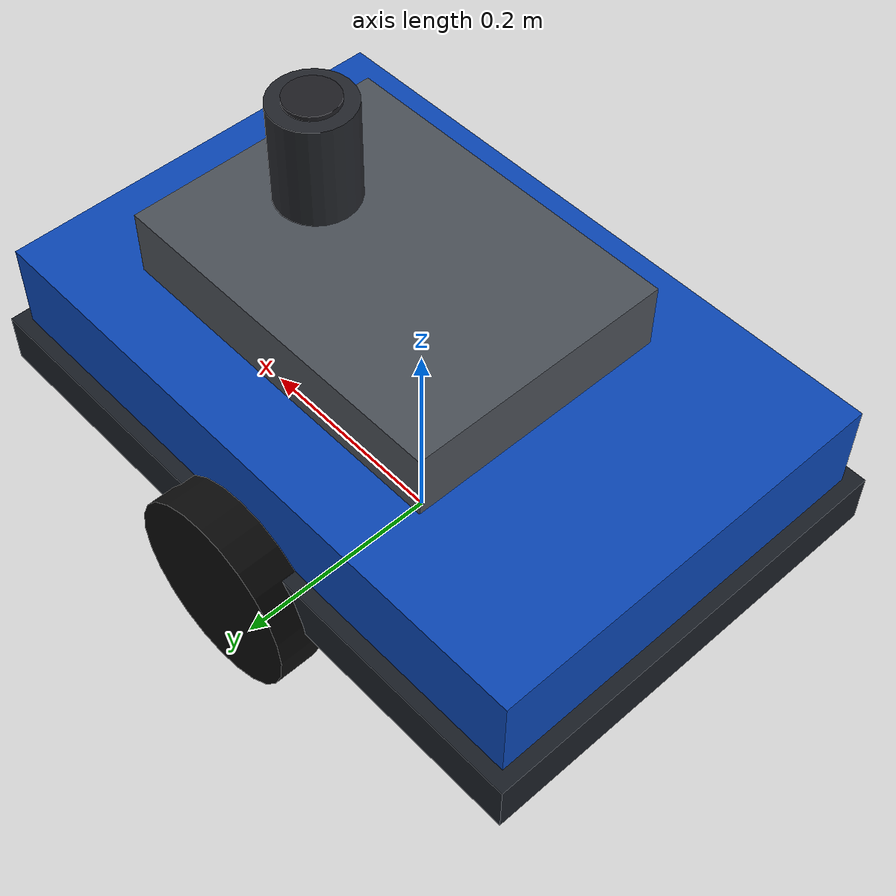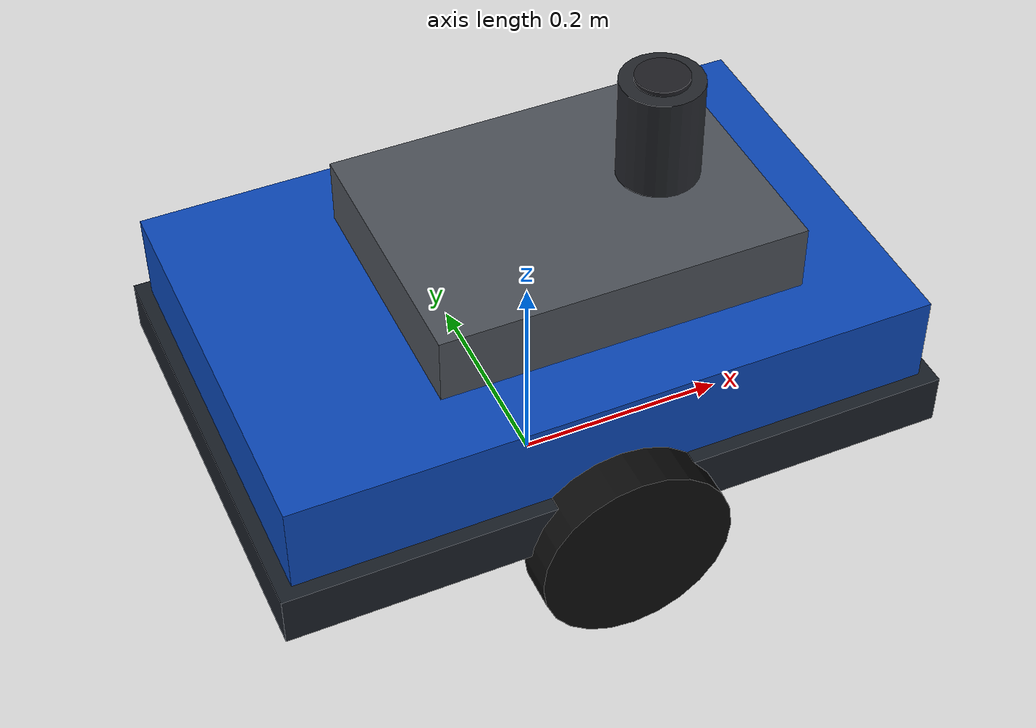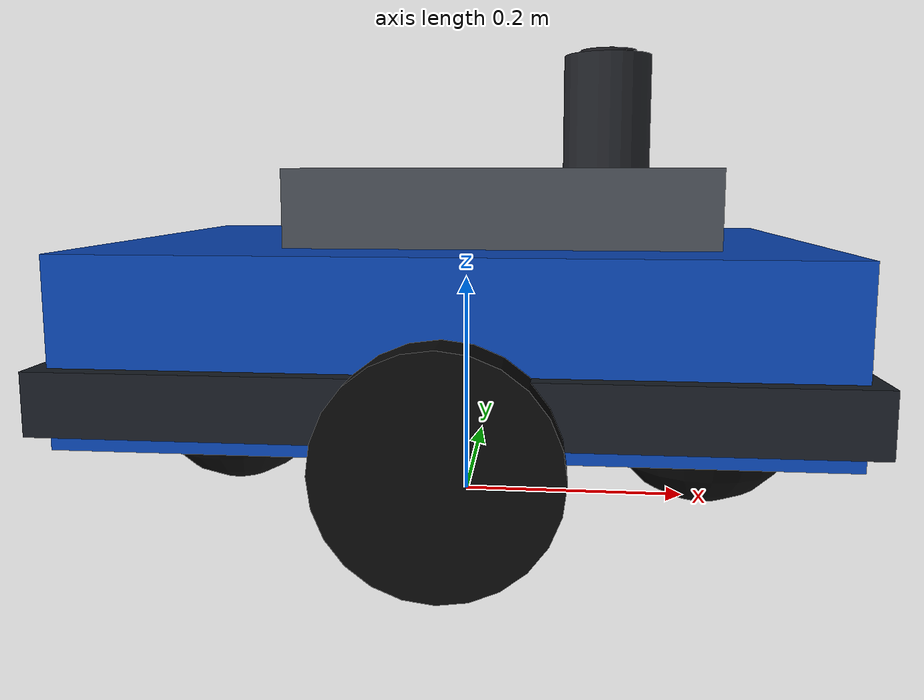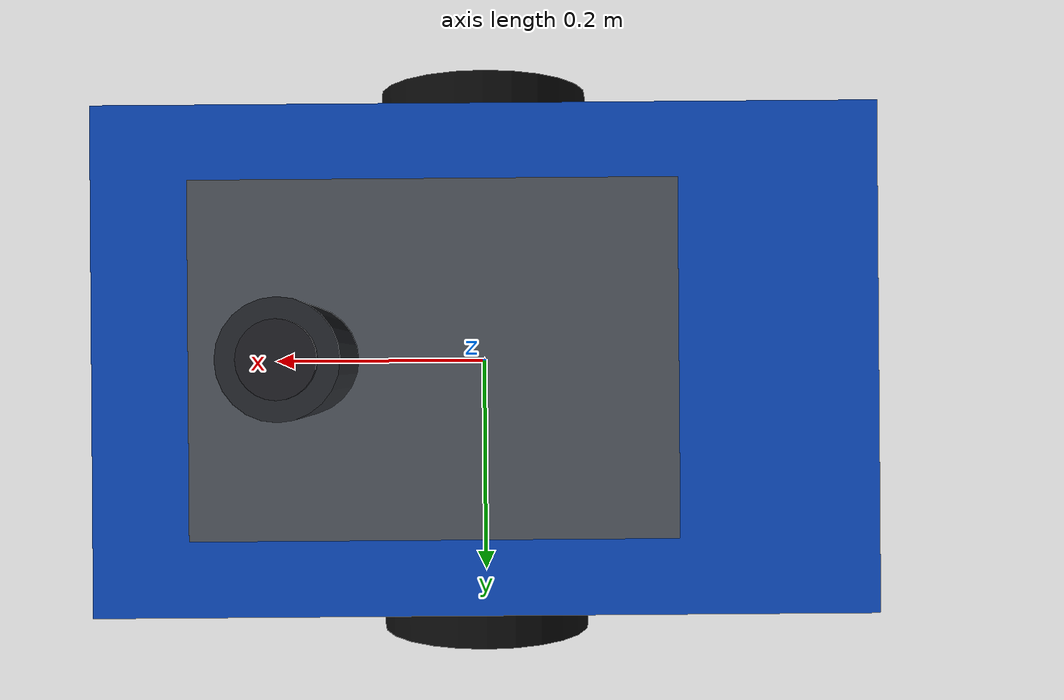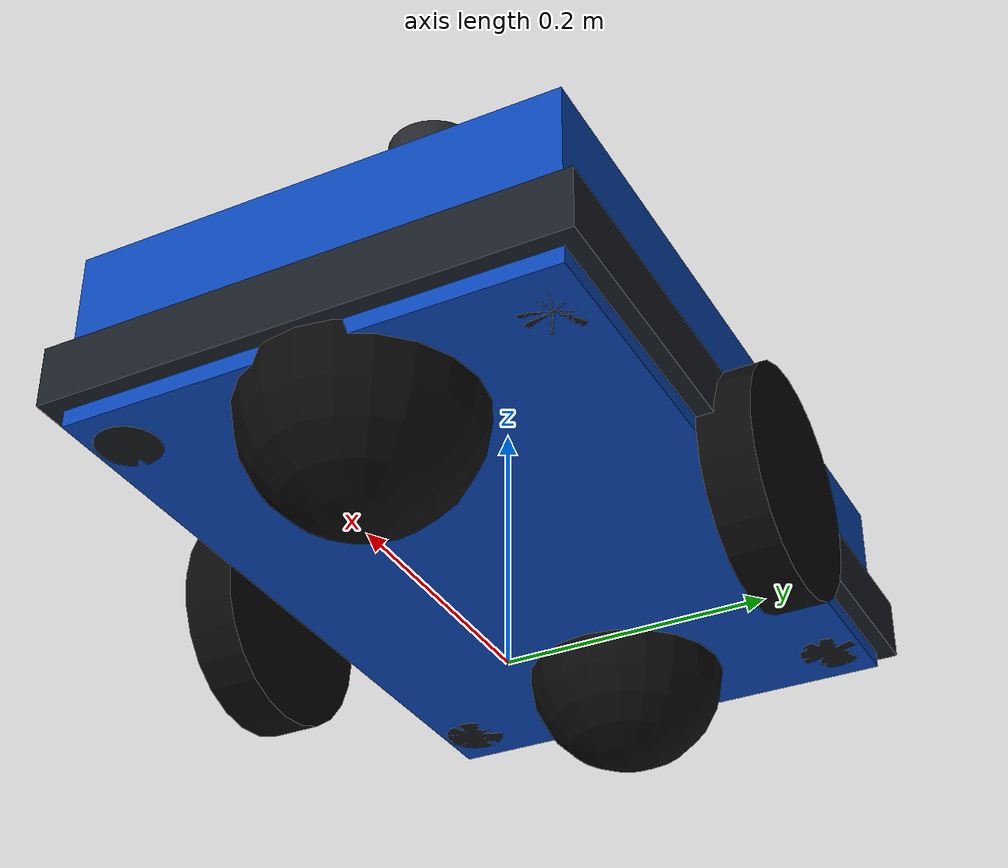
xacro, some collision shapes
<?xml version="1.0"?>
<robot xmlns:xacro="http://www.ros.org/wiki/xacro" name="heavy_diff_amr">
  <xacro:arg name="robot_name" default="heavy_1"/>
  <xacro:arg name="controllers_file" default=""/>
  <xacro:include filename="$(find hetero_fleet_description)/urdf/common.xacro"/>
  <xacro:property name="controllers_file" value="$(arg controllers_file)"/>
  <xacro:property name="robot_name" value="$(arg robot_name)"/>
  <xacro:property name="s" value="0.445526037015"/>
  <xacro:property name="base_length" value="${1.32 * s}"/>
  <xacro:property name="base_width" value="${0.86 * s}"/>
  <xacro:property name="base_height" value="${0.33 * s}"/>
  <xacro:property name="wheel_radius" value="${0.20 * s}"/>
  <xacro:property name="wheel_width" value="${0.09 * s}"/>

  <link name="base_footprint"/>
  <link name="base_link">
    <inertial><origin xyz="${0.10 * s} 0 0"/><mass value="${125.0 * s**3}"/><inertia ixx="${10.0 * s**5}" ixy="0" ixz="0" iyy="${14.0 * s**5}" iyz="0" izz="${20.0 * s**5}"/></inertial>
    <visual><origin xyz="0 0 0"/><geometry><mesh filename="package://hetero_fleet_description/meshes/heavy_shell.stl" scale="${s} ${s} ${s}"/></geometry><material name="blue"><color rgba="0.04 0.28 0.72 1"/></material></visual>
    <collision><origin xyz="0 0 ${base_height / 2}"/><geometry><box size="${base_length} ${base_width} ${base_height}"/></geometry></collision>
  </link>
  <joint name="base_footprint_joint" type="fixed"><parent link="base_footprint"/><child link="base_link"/><origin xyz="0 0 ${wheel_radius}"/></joint>
  <link name="underbody_link"><visual><origin xyz="0 0 ${0.07 * s}"/><geometry><box size="${1.22 * s} ${0.76 * s} ${0.14 * s}"/></geometry><material name="underbody"><color rgba="0.12 0.14 0.16 1"/></material></visual><collision><origin xyz="0 0 ${0.07 * s}"/><geometry><box size="${1.22 * s} ${0.76 * s} ${0.14 * s}"/></geometry></collision></link>
  <joint name="underbody_joint" type="fixed"><parent link="base_link"/><child link="underbody_link"/><origin xyz="0 0 ${0.01 * s}"/></joint>
  <link name="heavy_bumper_link"><visual><origin xyz="0 0 ${0.055 * s}"/><geometry><box size="${1.38 * s} ${0.92 * s} ${0.11 * s}"/></geometry><material name="bumper"><color rgba="0.10 0.12 0.15 1"/></material></visual><collision><origin xyz="0 0 ${0.055 * s}"/><geometry><box size="${1.38 * s} ${0.92 * s} ${0.11 * s}"/></geometry></collision></link>
  <joint name="heavy_bumper_joint" type="fixed"><parent link="base_link"/><child link="heavy_bumper_link"/><origin xyz="0 0 ${0.03 * s}"/></joint>
  <link name="payload_deck_link">
    <visual><origin xyz="0 0 ${0.07 * s}"/><geometry><box size="${0.76 * s} ${0.56 * s} ${0.14 * s}"/></geometry><material name="deck"><color rgba="0.30 0.32 0.35 1"/></material></visual>
    <collision><origin xyz="0 0 ${0.07 * s}"/><geometry><box size="${0.76 * s} ${0.56 * s} ${0.14 * s}"/></geometry></collision>
  </link>
  <joint name="payload_deck_joint" type="fixed"><parent link="base_link"/><child link="payload_deck_link"/><origin xyz="${0.08 * s} 0 ${base_height}"/></joint>

  <link name="front_left_corner_guard"><visual><origin xyz="0 0 ${0.16 * s}"/><geometry><cylinder radius="${0.055 * s}" length="${0.32 * s}"/></geometry><material name="guard"><color rgba="0.08 0.09 0.10 1"/></material></visual><collision><origin xyz="0 0 ${0.16 * s}"/><geometry><cylinder radius="${0.055 * s}" length="${0.32 * s}"/></geometry></collision></link>
  <joint name="front_left_corner_guard_joint" type="fixed"><parent link="base_link"/><child link="front_left_corner_guard"/><origin xyz="${0.57 * s} ${0.37 * s} 0"/></joint>
  <link name="front_right_corner_guard"><visual><origin xyz="0 0 ${0.16 * s}"/><geometry><cylinder radius="${0.055 * s}" length="${0.32 * s}"/></geometry><material name="guard"><color rgba="0.08 0.09 0.10 1"/></material></visual><collision><origin xyz="0 0 ${0.16 * s}"/><geometry><cylinder radius="${0.055 * s}" length="${0.32 * s}"/></geometry></collision></link>
  <joint name="front_right_corner_guard_joint" type="fixed"><parent link="base_link"/><child link="front_right_corner_guard"/><origin xyz="${0.57 * s} ${-0.37 * s} 0"/></joint>
  <link name="rear_left_corner_guard"><visual><origin xyz="0 0 ${0.16 * s}"/><geometry><cylinder radius="${0.055 * s}" length="${0.32 * s}"/></geometry><material name="guard"><color rgba="0.08 0.09 0.10 1"/></material></visual><collision><origin xyz="0 0 ${0.16 * s}"/><geometry><cylinder radius="${0.055 * s}" length="${0.32 * s}"/></geometry></collision></link>
  <joint name="rear_left_corner_guard_joint" type="fixed"><parent link="base_link"/><child link="rear_left_corner_guard"/><origin xyz="${-0.57 * s} ${0.37 * s} 0"/></joint>
  <link name="rear_right_corner_guard"><visual><origin xyz="0 0 ${0.16 * s}"/><geometry><cylinder radius="${0.055 * s}" length="${0.32 * s}"/></geometry><material name="guard"><color rgba="0.08 0.09 0.10 1"/></material></visual><collision><origin xyz="0 0 ${0.16 * s}"/><geometry><cylinder radius="${0.055 * s}" length="${0.32 * s}"/></geometry></collision></link>
  <joint name="rear_right_corner_guard_joint" type="fixed"><parent link="base_link"/><child link="rear_right_corner_guard"/><origin xyz="${-0.57 * s} ${-0.37 * s} 0"/></joint>

  <xacro:macro name="drive_wheel" params="side y">
    <link name="${side}_wheel_link">
      <inertial><mass value="${2.0 * s**3}"/><inertia ixx="${0.025 * s**5}" ixy="0" ixz="0" iyy="${0.014 * s**5}" iyz="0" izz="${0.025 * s**5}"/></inertial>
      <visual><origin rpy="${pi / 2} 0 0"/><geometry><cylinder radius="${wheel_radius}" length="${wheel_width}"/></geometry><material name="rubber"><color rgba="0.04 0.04 0.04 1"/></material></visual>
      <collision><origin rpy="${pi / 2} 0 0"/><geometry><cylinder radius="${wheel_radius}" length="${wheel_width}"/></geometry></collision>
    </link>
    <joint name="${side}_wheel_joint" type="continuous"><parent link="base_link"/><child link="${side}_wheel_link"/><origin xyz="0 ${y} 0"/><axis xyz="0 1 0"/><limit effort="65" velocity="10"/></joint>
  </xacro:macro>
  <xacro:drive_wheel side="left" y="${base_width / 2 + wheel_width / 2}"/><xacro:drive_wheel side="right" y="${-base_width / 2 - wheel_width / 2}"/>
  <link name="heavy_caster_fork_link"><visual><origin xyz="0 0 ${0.10 * s}"/><geometry><box size="${0.12 * s} ${0.10 * s} ${0.20 * s}"/></geometry><material name="fork"><color rgba="0.16 0.17 0.18 1"/></material></visual><collision><origin xyz="0 0 ${0.10 * s}"/><geometry><box size="${0.12 * s} ${0.10 * s} ${0.20 * s}"/></geometry></collision></link>
  <joint name="heavy_caster_fork_joint" type="fixed"><parent link="base_link"/><child link="heavy_caster_fork_link"/><origin xyz="${0.48 * s} 0 ${0.02 * s}"/></joint>
  <link name="front_caster_link"><visual><geometry><sphere radius="${0.20 * s}"/></geometry><material name="rubber"><color rgba="0.04 0.04 0.04 1"/></material></visual><collision><geometry><sphere radius="${0.20 * s}"/></geometry></collision></link>
  <joint name="front_caster_joint" type="fixed"><parent link="heavy_caster_fork_link"/><child link="front_caster_link"/><origin xyz="0 0 ${-0.02 * s}"/></joint>

  <link name="rear_safety_caster_link">
    <visual><geometry><sphere radius="${0.18 * s}"/></geometry><material name="rubber"><color rgba="0.04 0.04 0.04 1"/></material></visual>
    <collision><geometry><sphere radius="${0.18 * s}"/></geometry></collision>
  </link>
  <joint name="rear_safety_caster_joint" type="fixed">
    <parent link="base_link"/><child link="rear_safety_caster_link"/>
    <origin xyz="${-0.48 * s} 0 0"/>
  </joint>

  <link name="lidar_link">
    <inertial><mass value="0.18"/><inertia ixx="0.0003" ixy="0" ixz="0" iyy="0.0003" iyz="0" izz="0.0004"/></inertial>
    <visual><geometry><cylinder radius="${0.055 * s}" length="${0.06 * s}"/></geometry><material name="lidar"><color rgba="0.12 0.12 0.14 1"/></material></visual><collision><geometry><cylinder radius="${0.055 * s}" length="${0.06 * s}"/></geometry></collision>
  </link>
  <link name="lidar_mount_link"><visual><origin xyz="0 0 ${0.11 * s}"/><geometry><cylinder radius="${0.085 * s}" length="${0.22 * s}"/></geometry><material name="mount"><color rgba="0.14 0.15 0.17 1"/></material></visual><collision><origin xyz="0 0 ${0.11 * s}"/><geometry><cylinder radius="${0.075 * s}" length="${0.20 * s}"/></geometry></collision></link>
  <joint name="lidar_mount_joint" type="fixed"><parent link="payload_deck_link"/><child link="lidar_mount_link"/><origin xyz="${0.20 * s} 0 ${0.14 * s}"/></joint>
  <joint name="lidar_joint" type="fixed"><parent link="lidar_mount_link"/><child link="lidar_link"/><origin xyz="0 0 ${0.20 * s}"/></joint>
  <gazebo reference="lidar_link"><sensor name="${robot_name}_lidar" type="gpu_lidar"><always_on>1</always_on><visualize>false</visualize><update_rate>12</update_rate><topic>/${robot_name}/scan</topic><frame_id>lidar_link</frame_id><lidar><scan><horizontal><samples>720</samples><resolution>1</resolution><min_angle>-3.14159</min_angle><max_angle>3.14159</max_angle></horizontal></scan><range><min>0.15</min><max>18.0</max><resolution>0.01</resolution></range></lidar></sensor></gazebo>
  <xacro:fleet_gazebo_material link="base_link" rgba="0.04 0.28 0.72 1"/>
  <xacro:fleet_gazebo_wheel_dynamics link="left_wheel_link" mu1="1.5" mu2="1.5" kp="10000" kd="100.0" fdir1="1 0 0"/>
  <xacro:fleet_gazebo_wheel_dynamics link="right_wheel_link" mu1="1.5" mu2="1.5" kp="10000" kd="100.0" fdir1="1 0 0"/>
  <xacro:fleet_gazebo_wheel_dynamics link="front_caster_link" mu1="0.0" mu2="0.0" kp="10000" kd="100.0"/>
  <xacro:fleet_gazebo_wheel_dynamics link="rear_safety_caster_link" mu1="0.0" mu2="0.0" kp="10000" kd="100.0"/>
  <xacro:fleet_ros2_control name="${robot_name}" wheel_joints="${['left_wheel_joint', 'right_wheel_joint']}" controller_type="diff" controllers_file="${controllers_file}" namespace="${robot_name}"/>
</robot>
